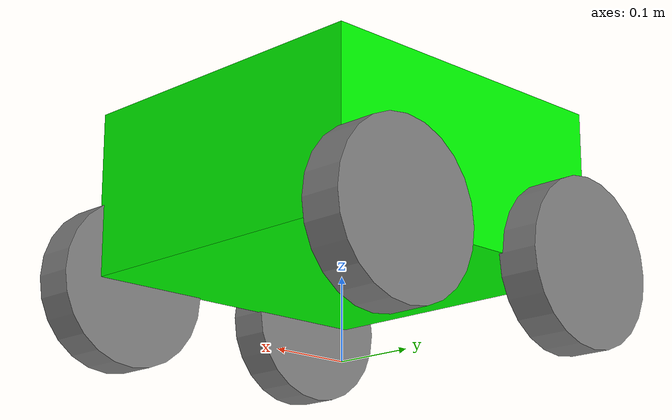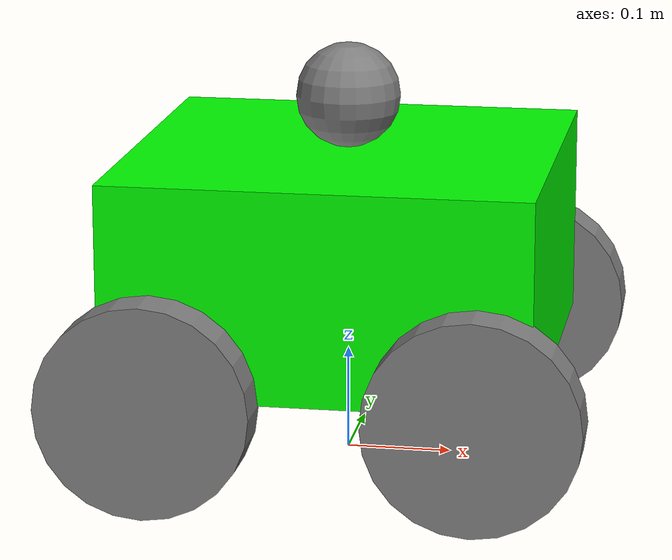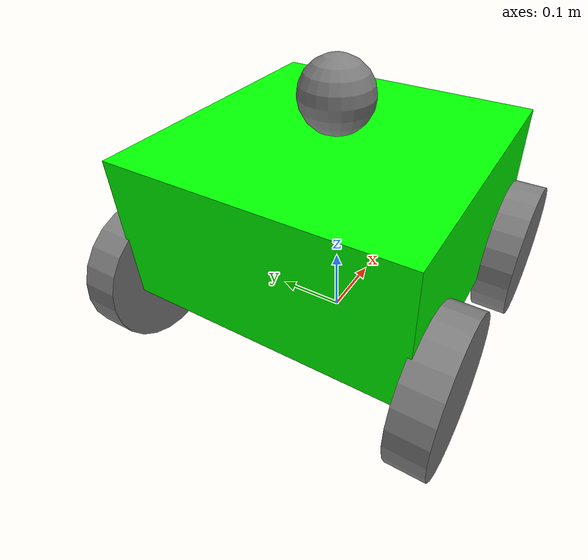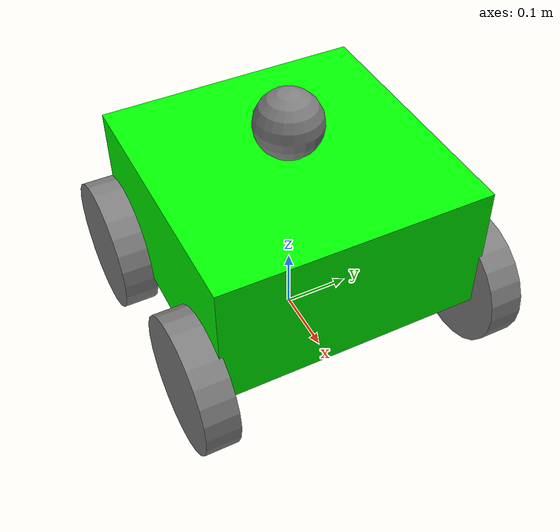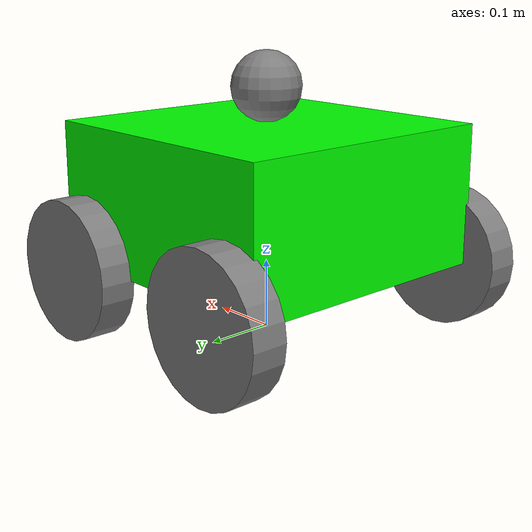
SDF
<?xml version="1.0" ?>
<sdf version="1.7">
  <model name="green_robot">
    <pose>0 0 0.2 0 0 0</pose>

    <link name="base_link">
      <inertial>
        <mass>1.0</mass>
        <inertia>
          <ixx>0.1</ixx> <iyy>0.1</iyy> <izz>0.1</izz>
        </inertia>
      </inertial>
      <collision name="base_collision">
        <geometry><box><size>0.4 0.4 0.2</size></box></geometry>
      </collision>
      <visual name="base_visual">
        <geometry><box><size>0.4 0.4 0.2</size></box></geometry>
        <material>
          <ambient>0 1 0 1</ambient>
          <diffuse>0 1 0 1</diffuse>
        </material>
      </visual>
    </link>

    <link name="front_left_wheel">
      <pose>0.15 0.22 -0.1 1.5707 0 0</pose>
      <collision name="collision">
        <geometry><cylinder><radius>0.1</radius><length>0.05</length></cylinder></geometry>
      </collision>
      <visual name="visual">
        <geometry><cylinder><radius>0.1</radius><length>0.05</length></cylinder></geometry>
        <material><ambient>0.5 0.5 0.5 1</ambient><diffuse>0.5 0.5 0.5 1</diffuse></material>
      </visual>
    </link>

    <link name="front_right_wheel">
      <pose>0.15 -0.22 -0.1 1.5707 0 0</pose>
      <collision name="collision">
        <geometry><cylinder><radius>0.1</radius><length>0.05</length></cylinder></geometry>
      </collision>
      <visual name="visual">
        <geometry><cylinder><radius>0.1</radius><length>0.05</length></cylinder></geometry>
        <material><ambient>0.5 0.5 0.5 1</ambient><diffuse>0.5 0.5 0.5 1</diffuse></material>
      </visual>
    </link>

    <link name="rear_left_wheel">
      <pose>-0.15 0.22 -0.1 1.5707 0 0</pose>
      <collision name="collision">
        <geometry><cylinder><radius>0.1</radius><length>0.05</length></cylinder></geometry>
      </collision>
      <visual name="visual">
        <geometry><cylinder><radius>0.1</radius><length>0.05</length></cylinder></geometry>
        <material><ambient>0.5 0.5 0.5 1</ambient><diffuse>0.5 0.5 0.5 1</diffuse></material>
      </visual>
    </link>

    <link name="rear_right_wheel">
      <pose>-0.15 -0.22 -0.1 1.5707 0 0</pose>
      <collision name="collision">
        <geometry><cylinder><radius>0.1</radius><length>0.05</length></cylinder></geometry>
      </collision>
      <visual name="visual">
        <geometry><cylinder><radius>0.1</radius><length>0.05</length></cylinder></geometry>
        <material><ambient>0.5 0.5 0.5 1</ambient><diffuse>0.5 0.5 0.5 1</diffuse></material>
      </visual>
    </link>

    <link name="lidar_link">
      <pose>0 0 0.15 0 0 0</pose>
      <visual name="visual">
        <geometry><sphere><radius>0.05</radius></sphere></geometry>
        <material><ambient>0.5 0.5 0.5 1</ambient><diffuse>0.5 0.5 0.5 1</diffuse></material>
      </visual>
      <sensor name="lidar" type="gpu_lidar">
        <update_rate>10</update_rate>
        <topic>/scan</topic>
        <lidar>
          <scan><horizontal><samples>180</samples><min_angle>-1.5708</min_angle><max_angle>1.5708</max_angle></horizontal></scan>
          <range><min>0.15</min><max>12.0</max></range>
        </lidar>
      </sensor>
    </link>

    <joint name="front_left_wheel_joint" type="revolute">
      <parent>base_link</parent><child>front_left_wheel</child>
      <axis><xyz>0 0 1</xyz></axis>
    </joint>

    <joint name="front_right_wheel_joint" type="revolute">
      <parent>base_link</parent><child>front_right_wheel</child>
      <axis><xyz>0 0 1</xyz></axis>
    </joint>

    <joint name="rear_left_wheel_joint" type="revolute">
      <parent>base_link</parent><child>rear_left_wheel</child>
      <axis><xyz>0 0 1</xyz></axis>
    </joint>

    <joint name="rear_right_wheel_joint" type="revolute">
      <parent>base_link</parent><child>rear_right_wheel</child>
      <axis><xyz>0 0 1</xyz></axis>
    </joint>

    <joint name="lidar_joint" type="fixed">
      <parent>base_link</parent><child>lidar_link</child>
    </joint>

    <plugin
      filename="gz-sim-diff-drive-system"
      name="gz::sim::systems::DiffDrive">
      <left_joint>front_left_wheel_joint</left_joint>
      <left_joint>rear_left_wheel_joint</left_joint>
      <right_joint>front_right_wheel_joint</right_joint>
      <right_joint>rear_right_wheel_joint</right_joint>
      <wheel_separation>0.44</wheel_separation>
      <wheel_radius>0.1</wheel_radius>
      <topic>/cmd_vel</topic>
      <odom_topic>/odom</odom_topic>
      <tf_topic>/tf</tf_topic>
      <frame_id>odom</frame_id>
      <child_frame_id>base_link</child_frame_id>
    </plugin>
  </model>
</sdf>
